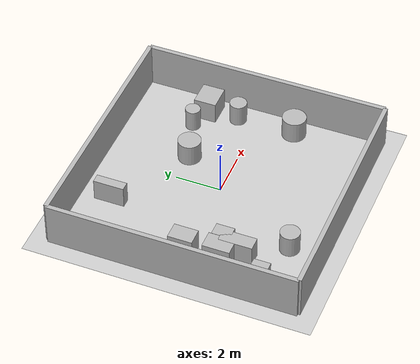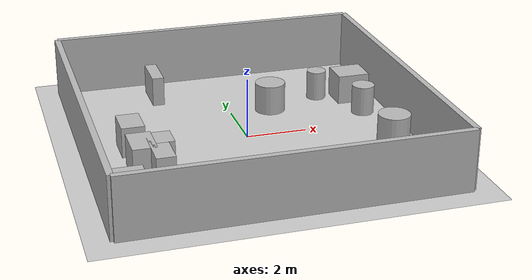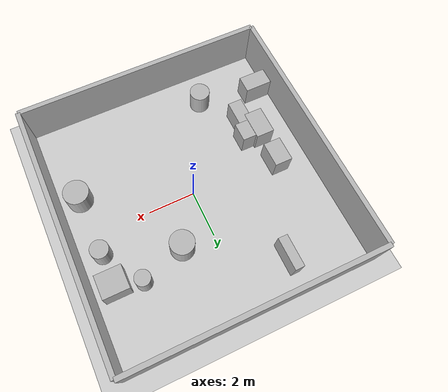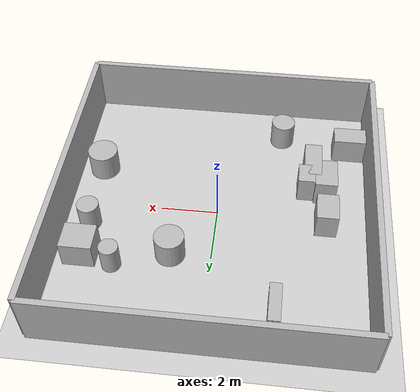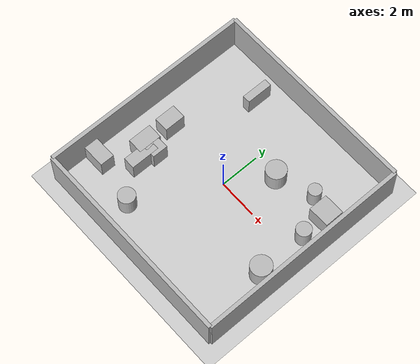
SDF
<?xml version="1.0"?>
<sdf version="1.6">
  <world name="env_10">

    <include><uri>model://ground_plane</uri></include>
    <include><uri>model://sun</uri></include>

    <!-- WALLS -->
    <model name="wall_north"><static>true</static><pose>0 5.465394372062223 1 0 0 0</pose>
      <link name="link"><collision name="collision">
        <geometry><box><size>10.670116749724599 0.2 2</size></box></geometry>
      </collision><visual name="visual">
        <geometry><box><size>10.670116749724599 0.2 2</size></box></geometry>
      </visual></link>
    </model>

    <model name="wall_south"><static>true</static><pose>0 -5.465394372062223 1 0 0 0</pose>
      <link name="link"><collision name="collision">
        <geometry><box><size>10.670116749724599 0.2 2</size></box></geometry>
      </collision><visual name="visual">
        <geometry><box><size>10.670116749724599 0.2 2</size></box></geometry>
      </visual></link>
    </model>

    <model name="wall_east"><static>true</static><pose>5.3350583748622995 0 1 0 0 1.57</pose>
      <link name="link"><collision name="collision">
        <geometry><box><size>10.930788744124445 0.2 2</size></box></geometry>
      </collision><visual name="visual">
        <geometry><box><size>10.930788744124445 0.2 2</size></box></geometry>
      </visual></link>
    </model>

    <model name="wall_west"><static>true</static><pose>-5.3350583748622995 0 1 0 0 1.57</pose>
      <link name="link"><collision name="collision">
        <geometry><box><size>10.930788744124445 0.2 2</size></box></geometry>
      </collision><visual name="visual">
        <geometry><box><size>10.930788744124445 0.2 2</size></box></geometry>
      </visual></link>
    </model>

    <!-- SENSOR -->

    <model name="lidar_sensor">
      <static>true</static>
      <pose>-1.87543904761691 -0.32129387497444206 0.4 0 0 0</pose>
      <link name="link">
        <sensor name="lidar" type="ray">
          <pose>0 0 0 0 0 0</pose>
          <visualize>true</visualize>
          <always_on>true</always_on>
          <update_rate>10</update_rate>
          <ray>
            <scan><horizontal>
              <samples>120</samples>
              <resolution>1</resolution>
              <min_angle>-3.14159</min_angle>
              <max_angle>3.14159</max_angle>
            </horizontal></scan>
            <range><min>0.15</min><max>20.0</max><resolution>0.01</resolution></range>
          </ray>
          <plugin name="lidar_plugin" filename="liblidar_plugin.so"/>
        </sensor>
      </link>
    </model>

    <!-- OBSTACLES -->

    <model name="obstacle_0">
      <static>true</static>
      <pose>-3.067810576965143 -1.3647814007471157 0.5 0 0 0</pose>
      <link name="link">
        <collision name="collision">
          <geometry><box><size>0.59 0.81 1.0</size></box></geometry>
        </collision>
        <visual name="visual">
          <geometry><box><size>0.59 0.81 1.0</size></box></geometry>
        </visual>
      </link>
    </model>

    <model name="obstacle_1">
      <static>true</static>
      <pose>4.406806304597062 -1.6872010276366307 0.5 0 0 0</pose>
      <link name="link">
        <collision name="collision">
          <geometry><cylinder><radius>0.53</radius><length>1.0</length></cylinder></geometry>
        </collision>
        <visual name="visual">
          <geometry><cylinder><radius>0.53</radius><length>1.0</length></cylinder></geometry>
        </visual>
      </link>
    </model>

    <model name="obstacle_2">
      <static>true</static>
      <pose>3.2794610505463933 2.5940579403099653 0.5 0 0 0</pose>
      <link name="link">
        <collision name="collision">
          <geometry><cylinder><radius>0.33</radius><length>1.0</length></cylinder></geometry>
        </collision>
        <visual name="visual">
          <geometry><cylinder><radius>0.33</radius><length>1.0</length></cylinder></geometry>
        </visual>
      </link>
    </model>

    <model name="obstacle_3">
      <static>true</static>
      <pose>-2.2121576801056886 4.058413730268008 0.5 0 0 0</pose>
      <link name="link">
        <collision name="collision">
          <geometry><box><size>0.4 1.36 1.0</size></box></geometry>
        </collision>
        <visual name="visual">
          <geometry><box><size>0.4 1.36 1.0</size></box></geometry>
        </visual>
      </link>
    </model>

    <model name="obstacle_4">
      <static>true</static>
      <pose>-3.7551894869222027 -1.454360638925559 0.5 0 0 0</pose>
      <link name="link">
        <collision name="collision">
          <geometry><box><size>0.78 1.2 1.0</size></box></geometry>
        </collision>
        <visual name="visual">
          <geometry><box><size>0.78 1.2 1.0</size></box></geometry>
        </visual>
      </link>
    </model>

    <model name="obstacle_5">
      <static>true</static>
      <pose>4.367136653801316 0.89843433061775 0.5 0 0 0</pose>
      <link name="link">
        <collision name="collision">
          <geometry><cylinder><radius>0.38</radius><length>1.0</length></cylinder></geometry>
        </collision>
        <visual name="visual">
          <geometry><cylinder><radius>0.38</radius><length>1.0</length></cylinder></geometry>
        </visual>
      </link>
    </model>

    <model name="obstacle_6">
      <static>true</static>
      <pose>-4.6185789712200735 -3.4452034154626876 0.5 0 0 0</pose>
      <link name="link">
        <collision name="collision">
          <geometry><box><size>1.17 0.73 1.0</size></box></geometry>
        </collision>
        <visual name="visual">
          <geometry><box><size>1.17 0.73 1.0</size></box></geometry>
        </visual>
      </link>
    </model>

    <model name="obstacle_7">
      <static>true</static>
      <pose>-2.11254737962593 -3.915660501531644 0.5 0 0 0</pose>
      <link name="link">
        <collision name="collision">
          <geometry><cylinder><radius>0.43</radius><length>1.0</length></cylinder></geometry>
        </collision>
        <visual name="visual">
          <geometry><cylinder><radius>0.43</radius><length>1.0</length></cylinder></geometry>
        </visual>
      </link>
    </model>

    <model name="obstacle_8">
      <static>true</static>
      <pose>-3.2760146155850807 -2.0759847197845254 0.5 0 0 0</pose>
      <link name="link">
        <collision name="collision">
          <geometry><box><size>0.61 1.48 1.0</size></box></geometry>
        </collision>
        <visual name="visual">
          <geometry><box><size>0.61 1.48 1.0</size></box></geometry>
        </visual>
      </link>
    </model>

    <model name="obstacle_9">
      <static>true</static>
      <pose>4.367626361477191 2.255906202438111 0.5 0 0 0</pose>
      <link name="link">
        <collision name="collision">
          <geometry><box><size>1.1 0.99 1.0</size></box></geometry>
        </collision>
        <visual name="visual">
          <geometry><box><size>1.1 0.99 1.0</size></box></geometry>
        </visual>
      </link>
    </model>

    <model name="obstacle_10">
      <static>true</static>
      <pose>-3.811575221205694 0.09813246003928544 0.5 0 0 0</pose>
      <link name="link">
        <collision name="collision">
          <geometry><box><size>0.75 1.07 1.0</size></box></geometry>
        </collision>
        <visual name="visual">
          <geometry><box><size>0.75 1.07 1.0</size></box></geometry>
        </visual>
      </link>
    </model>

    <model name="obstacle_11">
      <static>true</static>
      <pose>1.3858672762880877 1.97004636030021 0.5 0 0 0</pose>
      <link name="link">
        <collision name="collision">
          <geometry><cylinder><radius>0.51</radius><length>1.0</length></cylinder></geometry>
        </collision>
        <visual name="visual">
          <geometry><cylinder><radius>0.51</radius><length>1.0</length></cylinder></geometry>
        </visual>
      </link>
    </model>

  </world>
</sdf>
